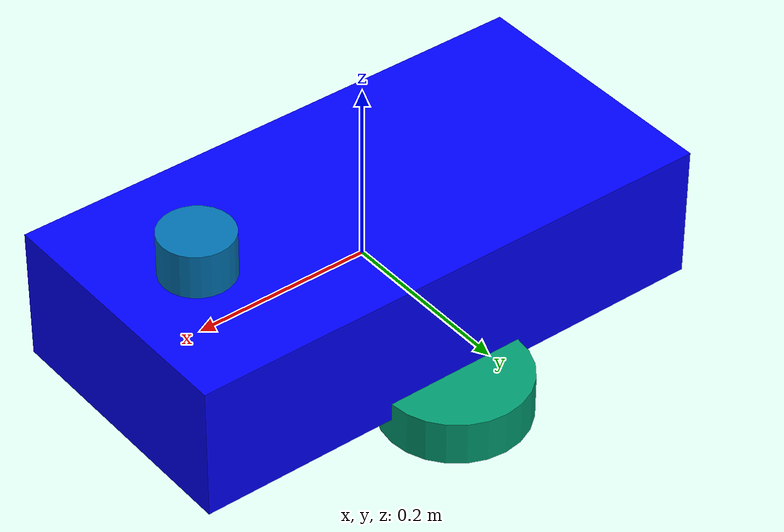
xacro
<?xml version="1.0"?>
<robot name="simple_car" xmlns:xacro="http://ros.org/wiki/xacro">

  <!-- Materials (optional) -->
  <material name="blue">
    <color rgba="0 0 1 1"/>
  </material>

  <!-- Dummy root link       -->
  <link name="base_footprint"/>

  <!-- Base link             -->
  <link name="base_link">
    <visual>
      <geometry>
        <box size="0.6 0.3 0.15"/>
      </geometry>
      <material name="blue"/>
    </visual>
    <collision>
      <geometry>
        <box size="0.6 0.3 0.15"/>
      </geometry>
    </collision>
    <inertial>
      <origin xyz="0 0 0"/>
      <mass value="10.0"/>
      <inertia
        ixx="1.0" ixy="0.0" ixz="0.0"
        iyy="1.0" iyz="0.0"
        izz="1.0"/>
    </inertial>
  </link>

  <!-- base_footprint → base_link -->
  <joint name="base_footprint_joint" type="fixed">
    <parent link="base_footprint"/>
    <child link="base_link"/>
    <origin xyz="0 0 0"/>
  </joint>

  <!-- Wheels                -->

  <link name="left_wheel">
    <visual>
      <geometry>
        <cylinder radius="0.08" length="0.05"/>
      </geometry>
    </visual>
    <collision>
      <geometry>
        <cylinder radius="0.08" length="0.05"/>
      </geometry>
    </collision>
    <inertial>
      <mass value="1.0"/>
      <inertia
        ixx="0.01" ixy="0.0" ixz="0.0"
        iyy="0.01" iyz="0.0"
        izz="0.01"/>
    </inertial>
  </link>

  <link name="right_wheel">
    <visual>
      <geometry>
        <cylinder radius="0.08" length="0.05"/>
      </geometry>
    </visual>
    <collision>
      <geometry>
        <cylinder radius="0.08" length="0.05"/>
      </geometry>
    </collision>
    <inertial>
      <mass value="1.0"/>
      <inertia
        ixx="0.01" ixy="0.0" ixz="0.0"
        iyy="0.01" iyz="0.0"
        izz="0.01"/>
    </inertial>
  </link>

  <!-- Wheel joints -->
  <joint name="left_wheel_joint" type="continuous">
    <parent link="base_link"/>
    <child link="left_wheel"/>
    <origin xyz="0 0.15 -0.08"/>
    <axis xyz="0 1 0"/>
  </joint>

  <joint name="right_wheel_joint" type="continuous">
    <parent link="base_link"/>
    <child link="right_wheel"/>
    <origin xyz="0 -0.15 -0.08"/>
    <axis xyz="0 1 0"/>
  </joint>

  <!-- LiDAR                 -->
  <link name="lidar_link">
    <visual>
      <geometry>
        <cylinder radius="0.04" length="0.05"/>
      </geometry>
    </visual>
  </link>

  <joint name="lidar_joint" type="fixed">
    <parent link="base_link"/>
    <child link="lidar_link"/>
    <origin xyz="0.2 0 0.1"/>
  </joint>

  <!-- Gazebo plugins        -->

  <!-- Differential drive -->
  <gazebo>
    <plugin name="diff_drive" filename="libgazebo_ros_diff_drive.so">
      <ros>
        <namespace>/</namespace>
      </ros>
      <left_joint>left_wheel_joint</left_joint>
      <right_joint>right_wheel_joint</right_joint>
      <wheel_separation>0.30</wheel_separation>
      <wheel_radius>0.08</wheel_radius>
      <cmd_vel_topic>cmd_vel</cmd_vel_topic>
      <odom_topic>odom</odom_topic>
      <publish_tf>true</publish_tf>
      <robot_base_frame>base_footprint</robot_base_frame>
    </plugin>
  </gazebo>

  <!-- 2D LiDAR -->
  <gazebo reference="lidar_link">
    <sensor name="lidar" type="ray">
      <update_rate>10</update_rate>
      <ray>
        <scan>
          <horizontal>
            <samples>360</samples>
            <min_angle>-3.14159</min_angle>
            <max_angle>3.14159</max_angle>
          </horizontal>
        </scan>
        <range>
          <min>0.12</min>
          <max>10.0</max>
        </range>
      </ray>
      <plugin name="gazebo_ros_laser" filename="libgazebo_ros_ray_sensor.so">
        <topicName>scan</topicName>
        <frameName>lidar_link</frameName>
        <output_type>sensor_msgs/LaserScan</output_type>
      </plugin>
    </sensor>
  </gazebo>

</robot>
